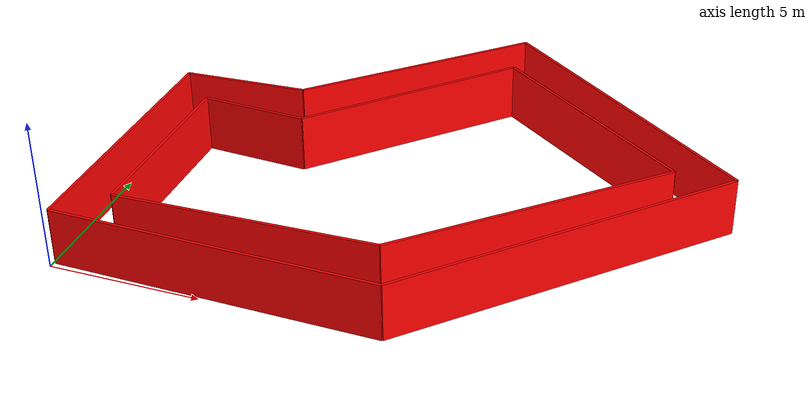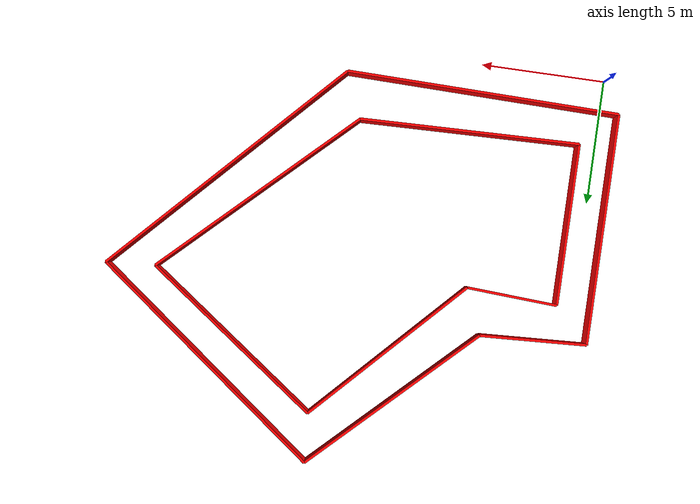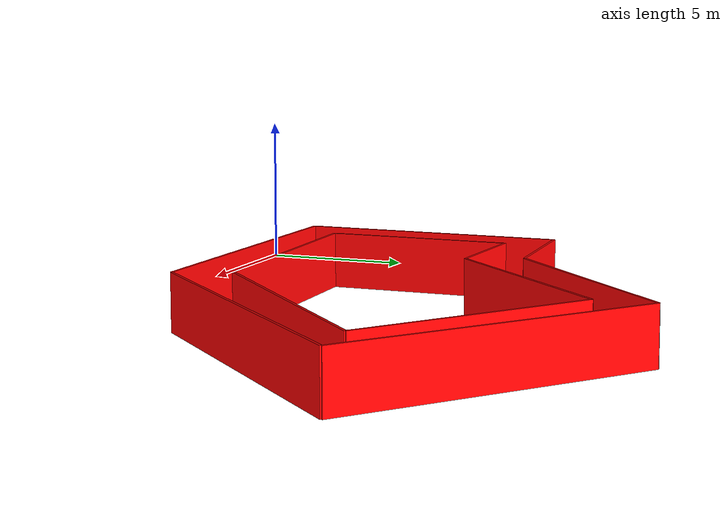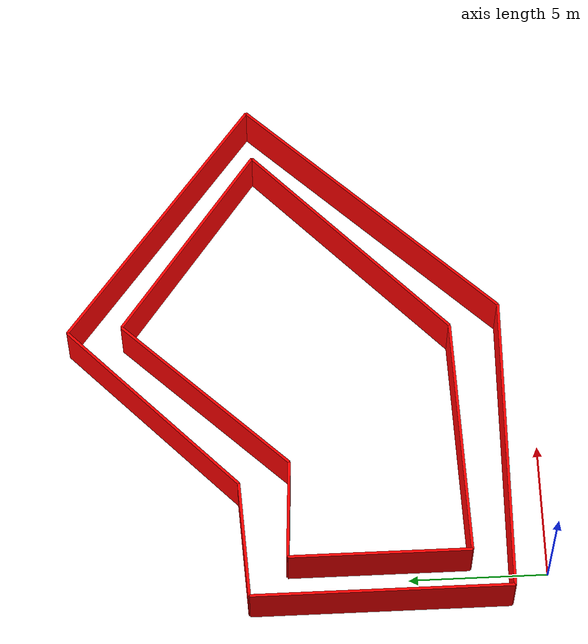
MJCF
<mujoco model="unnamed_model">
  <default>
    <default class="/"/>
  </default>
  <worldbody>
    <geom name="wall-1-0" class="/" type="box" size="5.5459543228894015 0.050000000000000003 1" rgba="1 0 0 1" pos="4.8377883255892709 1.184506843151083 0.10000000000000001" euler="0 0 358.88017879283075"/>
    <geom name="wall-1-1" class="/" type="box" size="6.2273721129533968 0.050000000000000003 1" rgba="1 0 0 1" pos="14.690083820588868 5.5735047437896963 0.10000000000000001" euler="0 0 46.236099066568705"/>
    <geom name="wall-1-2" class="/" type="box" size="5.7055480439462771 0.050000000000000003 1" rgba="1 0 0 1" pos="14.463297594360983 13.534186614451661 0.10000000000000001" euler="0 0 142.62672366216341"/>
    <geom name="wall-1-3" class="/" type="box" size="4.3797095356543965 0.050000000000000003 1" rgba="1 0 0 1" pos="6.7732137737721159 13.960681870661965 0.10000000000000001" euler="0 0 223.89825233825778"/>
    <geom name="wall-1-4" class="/" type="box" size="2.1649265417993453 0.050000000000000003 1" rgba="1 0 0 1" pos="1.4551048932241815 10.815493156848916 0.10000000000000001" euler="0 0 182.86969508045274"/>
    <geom name="wall-1-5" class="/" type="box" size="4.7071067811865479 0.050000000000000003 1" rgba="1 0 0 1" pos="-0.70710678118654746 6 0.10000000000000001" euler="0 0 270"/>
    <geom name="wall-2-0" class="/" type="box" size="4.4564231414957964 0.050000000000000003 1" rgba="1 0 0 1" pos="5.1622116744107291 2.815493156848917 0.10000000000000001" euler="0 0 1.3936500393493085"/>
    <geom name="wall-2-1" class="/" type="box" size="5.0895588021746541 0.050000000000000003 1" rgba="1 0 0 1" pos="13.309916179411132 6.4264952562103037 0.10000000000000001" euler="0 0 43.487502341316663"/>
    <geom name="wall-2-2" class="/" type="box" size="4.2949646701947177 0.050000000000000003 1" rgba="1 0 0 1" pos="13.536702405639017 12.465813385548341 0.10000000000000001" euler="0 0 143.79881089732206"/>
    <geom name="wall-2-3" class="/" type="box" size="4.1072449507239579 0.050000000000000003 1" rgba="1 0 0 1" pos="7.2267862262278841 12.039318129338035 0.10000000000000001" euler="0 0 226.17484483319373"/>
    <geom name="wall-2-4" class="/" type="box" size="1.840981677285638 0.050000000000000003 1" rgba="1 0 0 1" pos="2.5448951067758188 9.1845068431510839 0.10000000000000001" euler="0 0 176.6248034381002"/>
    <geom name="wall-2-5" class="/" type="box" size="3.2928932188134521 0.050000000000000003 1" rgba="1 0 0 1" pos="0.70710678118654746 6 0.10000000000000001" euler="0 0 270"/>
  </worldbody>
</mujoco>
